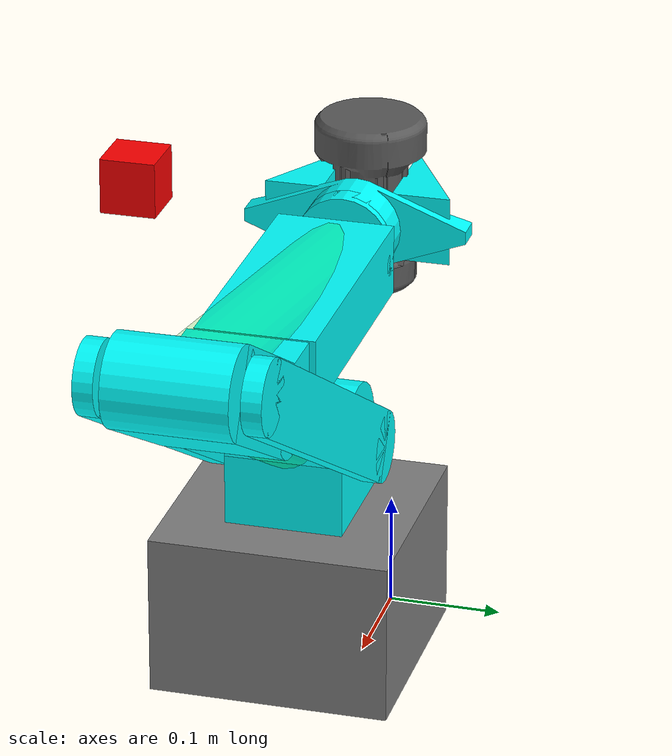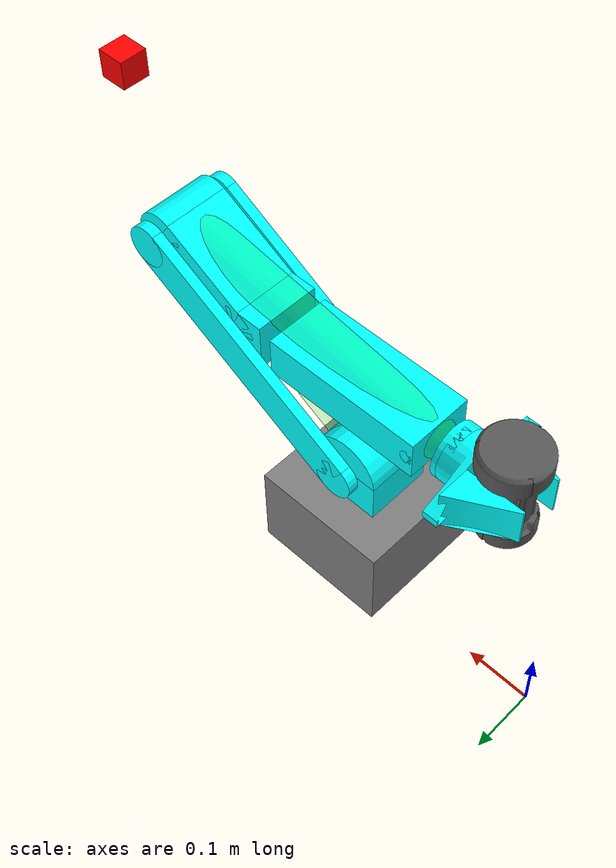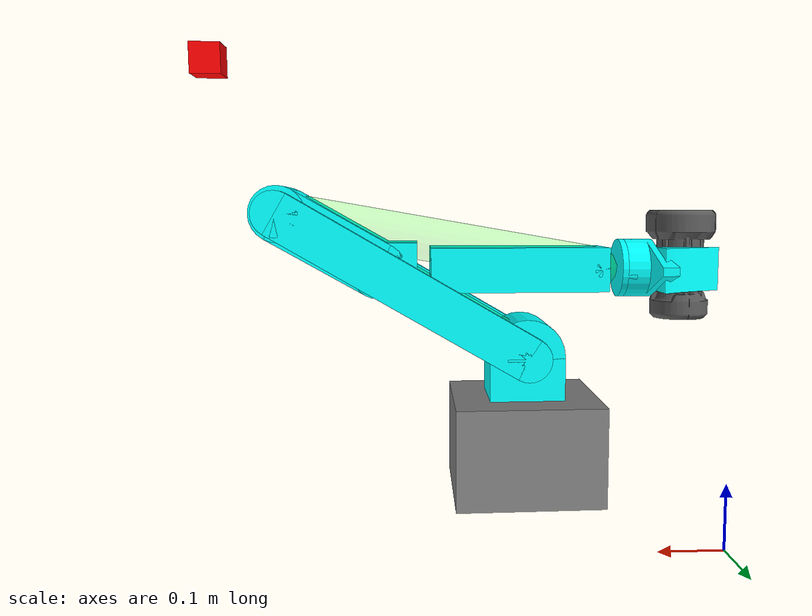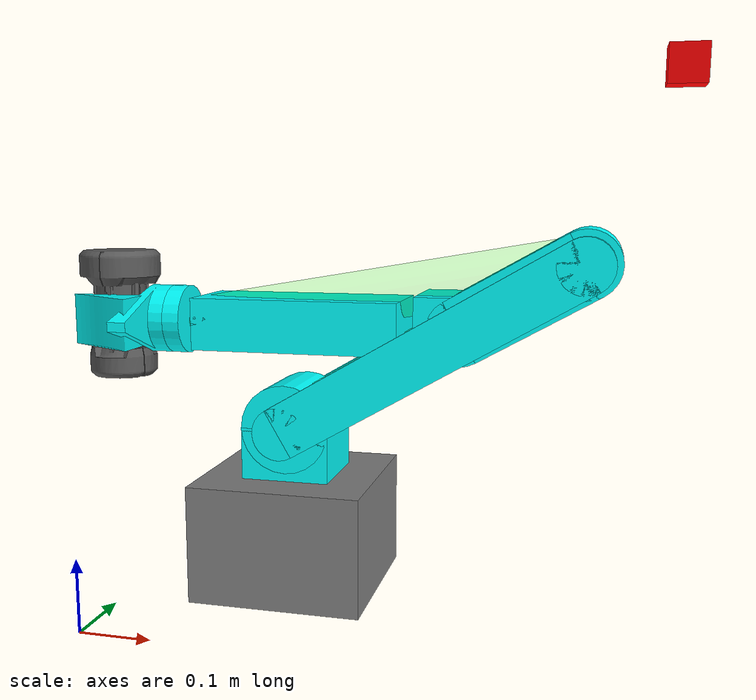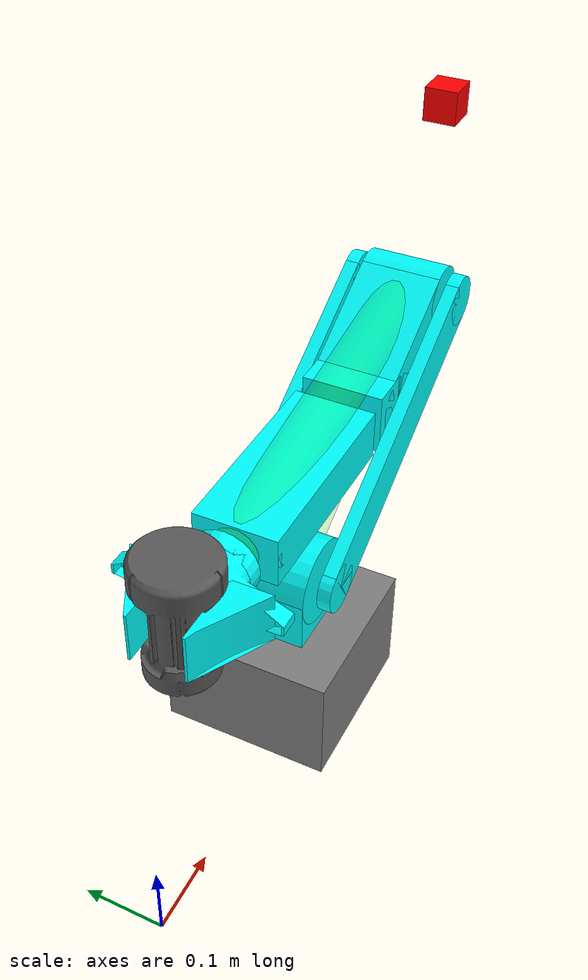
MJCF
<mujoco model="RM25_Arm_DH_Generated">
  <compiler angle="radian" coordinate="local"/>

  <option gravity="0 0 -9.81"/>
  <option integrator="implicitfast" timestep="0.001"/>

  <asset>
    <material name="blue" rgba="0.2 0.6 0.8 1"/>
    <material name="grey" rgba="0.7 0.7 0.7 1"/>

    <mesh name="energy_unit" file="model/field_assets/Energy_Unit.STL" />
    <mesh name="gripper_left" file="model/arm/gripper_asset/gripper_left.obj" scale="0.001 0.001 0.001"/>
    <mesh name="gripper_right" file="model/arm/gripper_asset/gripper_right.obj" scale="0.001 0.001 0.001"/>
    <mesh name="gripper_base" file="model/arm/gripper_asset/gripper_base.obj" scale="0.001 0.001 0.001"/>

  </asset>

  <worldbody>
    <light directional="true" diffuse=".8 .8 .8" specular=".2 .2 .2" pos="0 0 0" dir="0 0 -1"/>
  <body name="chassis" pos="0.3 0.0 0.3">
    <geom name="chassis_geom" type="box" size="0.1 0.1 0.068" pos="0 0 -0.128" rgba="0.5 0.5 0.5 1" mass="10"/>
    <joint name="chassis_y" type="slide" axis="0 1 0" range="-3 0.5" limited="false"/>

    <body name="link1" pos="0 0 0" euler="0 0 3.14159">
      <joint name="joint1" type="hinge" axis="0 0 1" limited="false"/>
        <geom name="link1_geom1" type="box" size="0.051 0.0493 0.03" pos="0 0 -.03" rgba="0 1 1 1" mass="0.651" />
        <geom name="link1_geom2" type="cylinder" size="0.051 0.0493" pos="0 0 0" euler="1.5708 0 0" rgba="0 1 1 1" mass="0.351"/>
        <body name="link2" pos="0 0 0" euler="-1.5708 0 -2.6127">
         <joint name="joint2" type="hinge" axis="0 0 1" range="-0.0872664 3.14159" limited="false" />
            <!-- 碰撞检测胶囊（seg 2→3，A[2]=0.38m，跟随 link2 运动） -->
            <geom name="cc_seg23" type="capsule" fromto="0 0 0  0.38 0 0"
                  size="0.03" rgba="0 1 0 0.10" contype="0" conaffinity="0" mass="0"/>
            <geom name="link2_geom1" type="cylinder" size="0.03 0.008" pos="0 0 0.0643" euler="0 0 0" rgba="0 1 1 1"  mass="0.01"/>
            <geom name="link2_geom2" type="box" size="0.19 0.03 0.008" pos="0.19 0 0.0643" rgba="0 1 1 1" mass="1"/>
            <geom name="link2_geom3" type="cylinder" size="0.03 0.008" pos="0.38 0 0.0643" euler="0 0 0" rgba="0 1 1 1" mass="0.01"/>

            <geom name="link2_geom4" type="cylinder" size="0.03 0.008" pos="0 0 -0.0643" euler="0 0 0" rgba="0 1 1 1" mass="0.01"/>
            <geom name="link2_geom5" type="box" size="0.19 0.03 0.008" pos="0.19 0 -0.0643" rgba="0 1 1 1" mass="1"/>
            <geom name="link2_geom6" type="cylinder" size="0.03 0.008" pos="0.38 0 -0.0643" euler="0 0 0" rgba="0 1 1 1" mass="0.01"/>

            <body name="link3" pos="0.38 0 0" euler="-3.14159 0 2.0996">
             <joint name="joint3" type="hinge" axis="0 0 1" range="-0.0872664 5.75959" limited="false" />                <!-- 碰撞检测胶囊（seg 3→4，A[3]=0.07412, D_offset=0.428m，跟随 link3 运动） -->
                <geom name="cc_seg34" type="capsule" fromto="0 0 0  0.07412 0.428 0"
                      size="0.03" rgba="0 1 0 0.10" contype="0" conaffinity="0" mass="0"/>
                <geom name="link3_geom1" type="cylinder" size="0.037 0.0493" pos="0 0 0" euler="0 0 0" rgba="0 1 1 1" mass="0.01"/>
                <geom name="link3_geom2" type="box" size="0.037 0.075 0.0493" pos="0.03706 0.0652 0" euler="0 0 -0.51679" rgba="0 1 1 1" mass="1.7"/>
                <geom name="link3_geom3" type="cylinder" size="0.037 0.0493" pos="0.07412 0.1304 0" euler="0 0 0" rgba="0 1 1 1" mass="0.01"/>
                <geom name="link3_geom4" type="box" size="0.037 0.025 0.0493" pos="0.07412 0.1554 0" euler="0 0 0" rgba="0 1 1 1" mass="0.4"/>
                <camera name="main_camera" pos="-0.02 0.03 0" quat="0.5 0.5 -0.5 0.5" fovy="80"/>
                <body name="second_camera" pos="-0.2 -0.09 0">
                <joint name="second_camera_yaw" type="hinge" axis="1 0 0" limited="false"/>
                <joint name="second_camera_pitch" type="hinge" axis="0 0 1" limited="false"/>
                <geom name="camera_geom" type="box" size="0.02 0.02 0.02" rgba="1 0 0 1" mass="0.001"/>
                <camera name="second_camera" pos="0 0 0.13" quat="0.5 0.5 -0.5 0.5" fovy="80"/>
                <camera name="second_camera2" pos="0 0 -0.13" quat="0.5 0.5 -0.5 0.5" fovy="80"/>
                </body>
                    <body name="link4" pos="0.07412 0.428 0" euler="-1.5708 0 3.14159" >
                    <joint name="joint4" type="hinge" axis="0 0 1" limited="false"/>
                    <geom name="link4_geom1" type="box" size="0.0297 0.0493 0.1198" pos="0 0 -0.1098" euler="0 0 0" rgba="0 1 1 1" mass=".9"/>

                        <body name="link5" pos="0 0 0" euler="1.5708 0 0">
                        <joint name="joint5" type="hinge" axis="0 0 1"  range="-1.79769 1.79769" limited="false"/>
                        <geom name="link5_geom1" type="cylinder" size="0.01 0.0493" pos="0 0 0" euler="0 0 0" rgba="0 1 1 1" mass="0.3"/>
                            <body name="link6" pos="0 0 0" euler="-1.5708 0 0">
                            <joint name="joint6" type="hinge" axis="0 0 1" limited="false"/>
                            <inertial pos="0 0 0.072" mass="1.0" diaginertia="0.005 0.005 0.005"/>

                            <geom name="link6_geom2" type="cylinder" size="0.04 0.01" pos= "0 0 0.04" euler="0 0 0" rgba="0 1 1 1" mass="0.001"/>

                            <geom name="gripper_base" type="mesh" mesh="gripper_base" pos="0 0 0.077" euler="1.5708 0 0" rgba="0 1 1 1" mass="0.01" />
                              <body name="gripper" pos="0 0 0.077">
                                <geom name="gripper_left" type="mesh" mesh="gripper_left" pos="0 -0.03 0" euler="1.5708 0 0" rgba="0 1 1 1" mass="0.01"/>
                              </body>
                              <body name="gripper_left_body" pos="0 0 0.077">
                                <geom name="gripper_right" type="mesh" mesh="gripper_right" pos="0 0.03 0" euler="1.5708 0 0" rgba="0 1 1 1" mass="0.01"/>
                              </body>
                              <body name="energy_unit">
                                <geom name="energy_unit" type="mesh" mesh="energy_unit" pos="-0.07 0 0.12" euler="0 1.5708 0" rgba="0.35 0.35 0.35 1" mass="1"/>
                              </body>
                            </body>
                        </body>
                    </body>

            </body>
        </body>
    </body>
  </body>
  </worldbody>
  <equality>
  </equality>

  <actuator>
  <motor name="motor_joint1" joint="joint1" gear="1"/>
  <motor name="motor_joint2" joint="joint2" gear="1"/>
  <motor name="motor_joint3" joint="joint3" gear="1"/>
  <motor name="motor_joint4" joint="joint4" gear="1"/>
  <motor name="motor_joint5" joint="joint5" gear="1"/>
  <motor name="motor_joint6" joint="joint6" gear="1"/>
  <position name="chassis_y" joint="chassis_y" kp="1000" kv="200" gear="1" ctrllimited="false" ctrlrange="-0.5 0.5"/>

  <general name="j1" joint="joint1" gear="0"/>
  <general name="j2" joint="joint2" gear="0"/>
  <general name="j3" joint="joint3" gear="0"/>
  <general name="j4" joint="joint4" gear="0"/>
  <general name="j5" joint="joint5" gear="0"/>
  <general name="j6" joint="joint6" gear="0"/>

  </actuator>
</mujoco>
